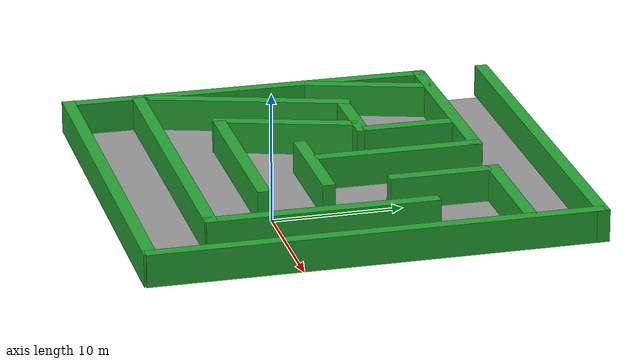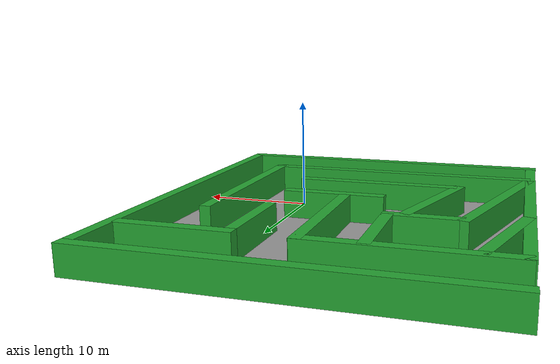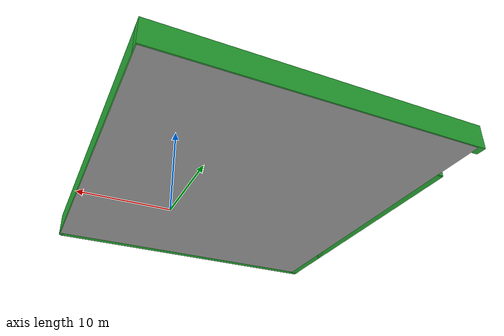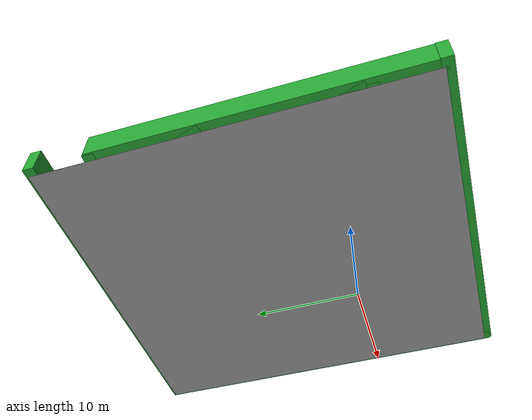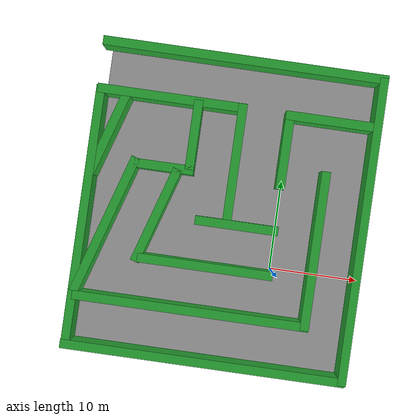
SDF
<?xml version="1.0"?>
<sdf version='1.3'>
  <model name='simple_labyrinth_green'>
    <static>1</static>
    <pose>-2.800000 1.580000 0.000000 0.000000 0.000000 0.000000 </pose>
    <link name='Wall_1'>
      <collision name='Wall_1_Collision'>
        <geometry>
          <box>
            <size>0.960000 34.320000 2.500000</size>
          </box>
        </geometry>
        <pose>0.000000 0.000000 1.250000 0.000000 0.000000 0.000000</pose>
      </collision>
      <visual name='Wall_1_Visual'>
        <pose>0.000000 0.000000 1.250000 0.000000 0.000000 0.000000</pose>
        <geometry>
          <box>
            <size>0.960000 34.320000 2.500000</size>
          </box>
        </geometry>
        <material>
          <script>
            <uri>file://media/materials/scripts/gazebo.material</uri>
            <name>Gazebo/Green</name>
          </script>
        </material>
      </visual>
      <velocity_decay>
        <linear>0.000000</linear>
        <angular>0.000000</angular>
      </velocity_decay>
      <pose>12.290000 4.020000 0.000000 0.000000 0.000000 3.141590</pose>
    </link>
    <link name='Wall_2'>
      <collision name='Wall_2_Collision'>
        <geometry>
          <box>
            <size>31.750000 1.000000 2.500000</size>
          </box>
        </geometry>
        <pose>0.000000 0.000000 1.250000 0.000000 0.000000 0.000000</pose>
      </collision>
      <visual name='Wall_2_Visual'>
        <pose>0.000000 0.000000 1.250000 0.000000 0.000000 0.000000</pose>
        <geometry>
          <box>
            <size>31.750000 1.000000 2.500000</size>
          </box>
        </geometry>
        <material>
          <script>
            <uri>file://media/materials/scripts/gazebo.material</uri>
            <name>Gazebo/Green</name>
          </script>
        </material>
      </visual>
      <velocity_decay>
        <linear>0.000000</linear>
        <angular>0.000000</angular>
      </velocity_decay>
      <pose>-3.240000 -12.800000 0.000000 0.000000 0.000000 3.141590</pose>
    </link>
    <link name='Wall_3'>
      <collision name='Wall_3_Collision'>
        <geometry>
          <box>
            <size>1.000000 17.740000 2.500000</size>
          </box>
        </geometry>
        <pose>0.000000 0.000000 1.250000 0.000000 0.000000 0.000000</pose>
      </collision>
      <visual name='Wall_3_Visual'>
        <pose>0.000000 0.000000 1.250000 0.000000 0.000000 0.000000</pose>
        <geometry>
          <box>
            <size>1.000000 17.740000 2.500000</size>
          </box>
        </geometry>
        <material>
          <script>
            <uri>file://media/materials/scripts/gazebo.material</uri>
            <name>Gazebo/Green</name>
          </script>
        </material>
      </visual>
      <velocity_decay>
        <linear>0.000000</linear>
        <angular>0.000000</angular>
      </velocity_decay>
      <pose>7.370000 1.190000 0.000000 0.000000 0.000000 3.141590</pose>
    </link>
    <link name='Wall_4'>
      <collision name='Wall_4_Collision'>
        <geometry>
          <box>
            <size>26.420000 1.000000 2.500000</size>
          </box>
        </geometry>
        <pose>0.000000 0.000000 1.250000 0.000000 0.000000 0.000000</pose>
      </collision>
      <visual name='Wall_4_Visual'>
        <pose>0.000000 0.000000 1.250000 0.000000 0.000000 0.000000</pose>
        <geometry>
          <box>
            <size>26.420000 1.000000 2.500000</size>
          </box>
        </geometry>
        <material>
          <script>
            <uri>file://media/materials/scripts/gazebo.material</uri>
            <name>Gazebo/Green</name>
          </script>
        </material>
      </visual>
      <velocity_decay>
        <linear>0.000000</linear>
        <angular>0.000000</angular>
      </velocity_decay>
      <pose>-5.360000 -7.290000 0.000000 0.000000 0.000000 3.141590</pose>
    </link>
    <link name='Wall_5'>
      <collision name='Wall_5_Collision'>
        <geometry>
          <box>
            <size>9.940000 1.000000 2.500000</size>
          </box>
        </geometry>
        <pose>0.000000 0.000000 1.250000 0.000000 0.000000 0.000000</pose>
      </collision>
      <visual name='Wall_5_Visual'>
        <pose>0.000000 0.000000 1.250000 0.000000 0.000000 0.000000</pose>
        <geometry>
          <box>
            <size>9.940000 1.000000 2.500000</size>
          </box>
        </geometry>
        <material>
          <script>
            <uri>file://media/materials/scripts/gazebo.material</uri>
            <name>Gazebo/Green</name>
          </script>
        </material>
      </visual>
      <velocity_decay>
        <linear>0.000000</linear>
        <angular>0.000000</angular>
      </velocity_decay>
      <pose>7.020000 15.630000 0.000000 0.000000 0.000000 3.141590</pose>
    </link>
    <link name='Wall_6'>
      <collision name='Wall_6_Collision'>
        <geometry>
          <box>
            <size>1.000000 7.880000 2.500000</size>
          </box>
        </geometry>
        <pose>0.000000 0.000000 1.250000 0.000000 0.000000 0.000000</pose>
      </collision>
      <visual name='Wall_6_Visual'>
        <pose>0.000000 0.000000 1.250000 0.000000 0.000000 0.000000</pose>
        <geometry>
          <box>
            <size>1.000000 7.880000 2.500000</size>
          </box>
        </geometry>
        <material>
          <script>
            <uri>file://media/materials/scripts/gazebo.material</uri>
            <name>Gazebo/Green</name>
          </script>
        </material>
      </visual>
      <velocity_decay>
        <linear>0.000000</linear>
        <angular>0.000000</angular>
      </velocity_decay>
      <pose>2.550000 11.410000 0.000000 0.000000 0.000000 3.141590</pose>
    </link>
    <link name='Wall_7'>
      <collision name='Wall_7_Collision'>
        <geometry>
          <box>
            <size>15.110000 1.000000 2.500000</size>
          </box>
        </geometry>
        <pose>0.000000 0.000000 1.250000 0.000000 0.000000 0.000000</pose>
      </collision>
      <visual name='Wall_7_Visual'>
        <pose>0.000000 0.000000 1.250000 0.000000 0.000000 0.000000</pose>
        <geometry>
          <box>
            <size>15.110000 1.000000 2.500000</size>
          </box>
        </geometry>
        <material>
          <script>
            <uri>file://media/materials/scripts/gazebo.material</uri>
            <name>Gazebo/Green</name>
          </script>
        </material>
      </visual>
      <velocity_decay>
        <linear>0.000000</linear>
        <angular>0.000000</angular>
      </velocity_decay>
      <pose>-4.470000 -2.230000 0.000000 0.000000 0.000000 3.141590</pose>
    </link>
    <link name='Wall_8'>
      <collision name='Wall_8_Collision'>
        <geometry>
          <box>
            <size>9.270000 1.000000 2.500000</size>
          </box>
        </geometry>
        <pose>0.000000 0.000000 1.250000 0.000000 0.000000 0.000000</pose>
      </collision>
      <visual name='Wall_8_Visual'>
        <pose>0.000000 0.000000 1.250000 0.000000 0.000000 0.000000</pose>
        <geometry>
          <box>
            <size>9.270000 1.000000 2.500000</size>
          </box>
        </geometry>
        <material>
          <script>
            <uri>file://media/materials/scripts/gazebo.material</uri>
            <name>Gazebo/Green</name>
          </script>
        </material>
      </visual>
      <velocity_decay>
        <linear>0.000000</linear>
        <angular>0.000000</angular>
      </velocity_decay>
      <pose>-1.630000 2.760000 0.000000 0.000000 0.000000 3.141590</pose>
    </link>
    <link name='Wall_9'>
      <collision name='Wall_9_Collision'>
        <geometry>
          <box>
            <size>1.000000 13.050000 2.500000</size>
          </box>
        </geometry>
        <pose>0.000000 0.000000 1.250000 0.000000 0.000000 0.000000</pose>
      </collision>
      <visual name='Wall_9_Visual'>
        <pose>0.000000 0.000000 1.250000 0.000000 0.000000 0.000000</pose>
        <geometry>
          <box>
            <size>1.000000 13.050000 2.500000</size>
          </box>
        </geometry>
        <material>
          <script>
            <uri>file://media/materials/scripts/gazebo.material</uri>
            <name>Gazebo/Green</name>
          </script>
        </material>
      </visual>
      <velocity_decay>
        <linear>0.000000</linear>
        <angular>0.000000</angular>
      </velocity_decay>
      <pose>-2.770000 9.670000 0.000000 0.000000 0.000000 3.141590</pose>
    </link>
    <link name='Wall_10'>
      <collision name='Wall_10_Collision'>
        <geometry>
          <box>
            <size>6.610000 1.000000 2.500000</size>
          </box>
        </geometry>
        <pose>0.000000 0.000000 1.250000 0.000000 0.000000 0.000000</pose>
      </collision>
      <visual name='Wall_10_Visual'>
        <pose>0.000000 0.000000 1.250000 0.000000 0.000000 0.000000</pose>
        <geometry>
          <box>
            <size>6.610000 1.000000 2.500000</size>
          </box>
        </geometry>
        <material>
          <script>
            <uri>file://media/materials/scripts/gazebo.material</uri>
            <name>Gazebo/Green</name>
          </script>
        </material>
      </visual>
      <velocity_decay>
        <linear>0.000000</linear>
        <angular>0.000000</angular>
      </velocity_decay>
      <pose>-10.490000 8.100000 0.000000 0.000000 0.000000 3.141590</pose>
    </link>
    <link name='Wall_11'>
      <collision name='Wall_11_Collision'>
        <geometry>
          <box>
            <size>1.000000 11.210000 2.500000</size>
          </box>
        </geometry>
        <pose>0.000000 0.000000 1.250000 0.000000 0.000000 0.000000</pose>
      </collision>
      <visual name='Wall_11_Visual'>
        <pose>0.000000 0.000000 1.250000 0.000000 0.000000 0.000000</pose>
        <geometry>
          <box>
            <size>1.000000 11.210000 2.500000</size>
          </box>
        </geometry>
        <material>
          <script>
            <uri>file://media/materials/scripts/gazebo.material</uri>
            <name>Gazebo/Green</name>
          </script>
        </material>
      </visual>
      <velocity_decay>
        <linear>0.000000</linear>
        <angular>0.000000</angular>
      </velocity_decay>
      <pose>-10.600000 2.670000 0.000000 0.000000 0.000000 2.84159</pose>
    </link>
    <link name='Wall_12'>
      <collision name='Wall_12_Collision'>
        <geometry>
          <box>
            <size>1.000000 7.770000 2.500000</size>
          </box>
        </geometry>
        <pose>0.000000 0.000000 1.250000 0.000000 0.000000 0.000000</pose>
      </collision>
      <visual name='Wall_12_Visual'>
        <pose>0.000000 0.000000 1.250000 0.000000 0.000000 0.000000</pose>
        <geometry>
          <box>
            <size>1.000000 7.770000 2.500000</size>
          </box>
        </geometry>
        <material>
          <script>
            <uri>file://media/materials/scripts/gazebo.material</uri>
            <name>Gazebo/Green</name>
          </script>
        </material>
      </visual>
      <velocity_decay>
        <linear>0.000000</linear>
        <angular>0.000000</angular>
      </velocity_decay>
      <pose>-7.680000 12.050000 0.000000 0.000000 0.000000 3.141590</pose>
    </link>
    <link name='Wall_13'>
      <collision name='Wall_13_Collision'>
        <geometry>
          <box>
            <size>1.000000 16.300000 2.500000</size>
          </box>
        </geometry>
        <pose>0.000000 0.000000 1.250000 0.000000 0.000000 0.000000</pose>
      </collision>
      <visual name='Wall_13_Visual'>
        <pose>0.000000 0.000000 1.250000 0.000000 0.000000 0.000000</pose>
        <geometry>
          <box>
            <size>1.000000 16.300000 2.500000</size>
          </box>
        </geometry>
        <material>
          <script>
            <uri>file://media/materials/scripts/gazebo.material</uri>
            <name>Gazebo/Green</name>
          </script>
        </material>
      </visual>
      <velocity_decay>
        <linear>0.000000</linear>
        <angular>0.000000</angular>
      </velocity_decay>
      <pose>-16.070000 0.896000 0.000000 0.000000 0.000000 2.84159</pose>
    </link>
    <link name='Wall_14'>
      <collision name='Wall_14_Collision'>
        <geometry>
          <box>
            <size>16.630000 1.000000 2.500000</size>
          </box>
        </geometry>
        <pose>0.000000 0.000000 1.250000 0.000000 0.000000 0.000000</pose>
      </collision>
      <visual name='Wall_14_Visual'>
        <pose>0.000000 0.000000 1.250000 0.000000 0.000000 0.000000</pose>
        <geometry>
          <box>
            <size>16.630000 1.000000 2.500000</size>
          </box>
        </geometry>
        <material>
          <script>
            <uri>file://media/materials/scripts/gazebo.material</uri>
            <name>Gazebo/Green</name>
          </script>
        </material>
      </visual>
      <velocity_decay>
        <linear>0.000000</linear>
        <angular>0.000000</angular>
      </velocity_decay>
      <pose>-10.620000 15.720000 0.000000 0.000000 0.000000 3.141590</pose>
    </link>
    <link name='Wall_15'>
      <collision name='Wall_15_Collision'>
        <geometry>
          <box>
            <size>31.830000 1.000000 2.500000</size>
          </box>
        </geometry>
        <pose>0.000000 0.000000 1.250000 0.000000 0.000000 0.000000</pose>
      </collision>
      <visual name='Wall_15_Visual'>
        <pose>0.000000 0.000000 1.250000 0.000000 0.000000 0.000000</pose>
        <geometry>
          <box>
            <size>31.830000 1.000000 2.500000</size>
          </box>
        </geometry>
        <material>
          <script>
            <uri>file://media/materials/scripts/gazebo.material</uri>
            <name>Gazebo/Green</name>
          </script>
        </material>
      </visual>
      <velocity_decay>
        <linear>0.000000</linear>
        <angular>0.000000</angular>
      </velocity_decay>
      <pose>-3.140000 21.000000 0.000000 0.000000 0.000000 3.141590</pose>
    </link>
    <link name='Wall_16'>
      <collision name='Wall_16_Collision'>
        <geometry>
          <box>
            <size>0.960000 28.905000 2.500000</size>
          </box>
        </geometry>
        <pose>0.000000 0.000000 1.250000 0.000000 0.000000 0.000000</pose>
      </collision>
      <visual name='Wall_16_Visual'>
        <pose>0.000000 0.000000 1.250000 0.000000 0.000000 0.000000</pose>
        <geometry>
          <box>
            <size>0.960000 28.905000 2.500000</size>
          </box>
        </geometry>
        <material>
          <script>
            <uri>file://media/materials/scripts/gazebo.material</uri>
            <name>Gazebo/Green</name>
          </script>
        </material>
      </visual>
      <velocity_decay>
        <linear>0.000000</linear>
        <angular>0.000000</angular>
      </velocity_decay>
      <pose>-18.580000 1.610000 0.000000 0.000000 0.000000 3.141590</pose>
    </link>
    <link name='Wall_17'>
      <collision name='Wall_17_Collision'>
        <geometry>
          <box>
            <size>1.000000 9.970000 2.500000</size>
          </box>
        </geometry>
        <pose>0.000000 0.000000 1.250000 0.000000 0.000000 0.000000</pose>
      </collision>
      <visual name='Wall_17_Visual'>
        <pose>0.000000 0.000000 1.250000 0.000000 0.000000 0.000000</pose>
        <geometry>
          <box>
            <size>1.000000 9.970000 2.500000</size>
          </box>
        </geometry>
        <material>
          <script>
            <uri>file://media/materials/scripts/gazebo.material</uri>
            <name>Gazebo/Green</name>
          </script>
        </material>
      </visual>
      <velocity_decay>
        <linear>0.000000</linear>
        <angular>0.000000</angular>
      </velocity_decay>
      <pose>-17.040000 11.020000 0.000000 0.000000 0.000000 2.84159</pose>
    </link>
    <link name='Base'>
      <collision name='Base_Collision'>
        <geometry>
          <box>
            <size>31.000000 34.000000 0.010000</size>
          </box>
        </geometry>
        <pose>0.000000 0.000000 0.000000 0.000000 0.000000 0.000000</pose>
      </collision>
      <visual name='Base_Visual'>
        <pose>0.000000 0.000000 0.000000 0.000000 0.000000 0.000000</pose>
        <geometry>
          <box>
            <size>31.000000 34.000000 0.010000</size>
          </box>
        </geometry>
        <material>
          <script>
            <uri>file://media/materials/scripts/gazebo.material</uri>
            <name>Gazebo/Grey</name>
          </script>
        </material>
      </visual>
      <velocity_decay>
        <linear>0.000000</linear>
        <angular>0.000000</angular>
      </velocity_decay>
      <pose>-2.820000 4.380000 0.000000 0.000000 0.000000 3.141590</pose>
    </link>
  </model>
</sdf>
